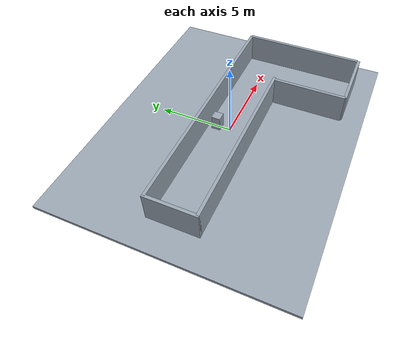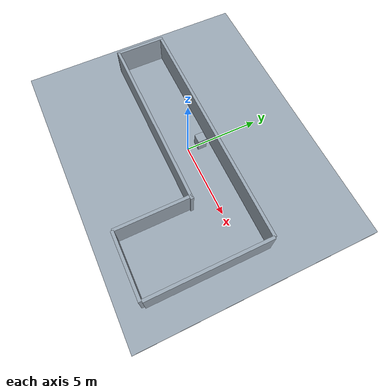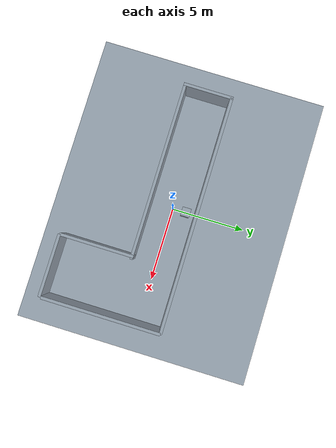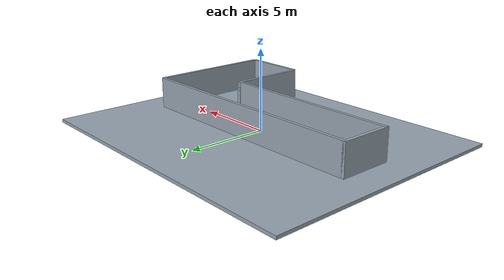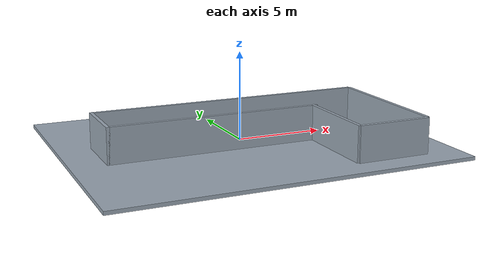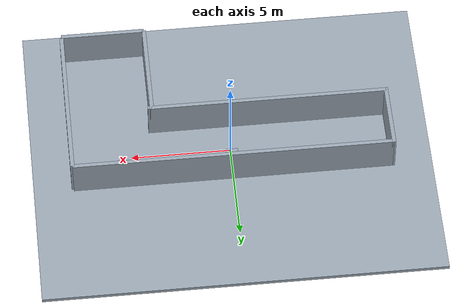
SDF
<sdf version="1.8">
  <world name="course_world">
    <physics name="physics" type="ignored">
      <max_step_size>0.0025</max_step_size>
      <real_time_factor>1.0</real_time_factor>
    </physics>
    <plugin filename="ignition-gazebo-physics-system" name="ignition::gazebo::systems::Physics" />
    <plugin filename="ignition-gazebo-user-commands-system" name="ignition::gazebo::systems::UserCommands" />
    <plugin filename="ignition-gazebo-scene-broadcaster-system" name="ignition::gazebo::systems::SceneBroadcaster" />
    <plugin filename="ignition-gazebo-sensors-system" name="ignition::gazebo::systems::Sensors">
      <render_engine>ogre2</render_engine>
    </plugin>
    <plugin filename="ignition-gazebo-imu-system" name="ignition::gazebo::systems::Imu" />
    <plugin filename="ignition-gazebo-forcetorque-system" name="ignition::gazebo::systems::ForceTorque" />
    <light name="sun" type="directional">
      <pose>0 0 10 0 0 0</pose>
      <direction>-0.5 0.1 -0.9</direction>
      <diffuse>0.8 0.8 0.8 1</diffuse>
    </light>
    <model name="floor">
      <static>true</static>
      <pose>0 0 -0.1 0 0 0</pose>
      <link name="link">
        <collision name="collision">
          <geometry>
            <box>
              <size>20 16 0.2</size>
            </box>
          </geometry>
        </collision>
        <visual name="visual">
          <geometry>
            <box>
              <size>20 16 0.2</size>
            </box>
          </geometry>
          <material>
            <diffuse>0.6 0.65 0.7 1</diffuse>
          </material>
        </visual>
      </link>
    </model>
    <model name="north">
      <static>true</static>
      <pose>0 1.6 1 0 0 0</pose>
      <link name="link">
        <collision name="collision">
          <geometry>
            <box>
              <size>16 0.2 2</size>
            </box>
          </geometry>
        </collision>
        <visual name="visual">
          <geometry>
            <box>
              <size>16 0.2 2</size>
            </box>
          </geometry>
          <material>
            <diffuse>0.6 0.65 0.7 1</diffuse>
          </material>
        </visual>
      </link>
    </model>
    <model name="south">
      <static>true</static>
      <pose>-2 -1.6 1 0 0 0</pose>
      <link name="link">
        <collision name="collision">
          <geometry>
            <box>
              <size>12 0.2 2</size>
            </box>
          </geometry>
        </collision>
        <visual name="visual">
          <geometry>
            <box>
              <size>12 0.2 2</size>
            </box>
          </geometry>
          <material>
            <diffuse>0.6 0.65 0.7 1</diffuse>
          </material>
        </visual>
      </link>
    </model>
    <model name="west">
      <static>true</static>
      <pose>-8 0 1 0 0 0</pose>
      <link name="link">
        <collision name="collision">
          <geometry>
            <box>
              <size>0.2 3.4 2</size>
            </box>
          </geometry>
        </collision>
        <visual name="visual">
          <geometry>
            <box>
              <size>0.2 3.4 2</size>
            </box>
          </geometry>
          <material>
            <diffuse>0.6 0.65 0.7 1</diffuse>
          </material>
        </visual>
      </link>
    </model>
    <model name="east">
      <static>true</static>
      <pose>8 -2.4 1 0 0 0</pose>
      <link name="link">
        <collision name="collision">
          <geometry>
            <box>
              <size>0.2 8 2</size>
            </box>
          </geometry>
        </collision>
        <visual name="visual">
          <geometry>
            <box>
              <size>0.2 8 2</size>
            </box>
          </geometry>
          <material>
            <diffuse>0.6 0.65 0.7 1</diffuse>
          </material>
        </visual>
      </link>
    </model>
    <model name="branch">
      <static>true</static>
      <pose>3.8 -4.0 1 0 0 0</pose>
      <link name="link">
        <collision name="collision">
          <geometry>
            <box>
              <size>0.2 5 2</size>
            </box>
          </geometry>
        </collision>
        <visual name="visual">
          <geometry>
            <box>
              <size>0.2 5 2</size>
            </box>
          </geometry>
          <material>
            <diffuse>0.6 0.65 0.7 1</diffuse>
          </material>
        </visual>
      </link>
    </model>
    <model name="end">
      <static>true</static>
      <pose>5.9 -6.5 1 0 0 0</pose>
      <link name="link">
        <collision name="collision">
          <geometry>
            <box>
              <size>4.2 0.2 2</size>
            </box>
          </geometry>
        </collision>
        <visual name="visual">
          <geometry>
            <box>
              <size>4.2 0.2 2</size>
            </box>
          </geometry>
          <material>
            <diffuse>0.6 0.65 0.7 1</diffuse>
          </material>
        </visual>
      </link>
    </model>
    <model name="obstacle">
      <static>true</static>
      <pose>0 0.9 0.5 0 0 0</pose>
      <link name="link">
        <collision name="collision">
          <geometry>
            <box>
              <size>0.6 0.6 1</size>
            </box>
          </geometry>
        </collision>
        <visual name="visual">
          <geometry>
            <box>
              <size>0.6 0.6 1</size>
            </box>
          </geometry>
          <material>
            <diffuse>0.6 0.65 0.7 1</diffuse>
          </material>
        </visual>
      </link>
    </model>
  </world>
</sdf>
